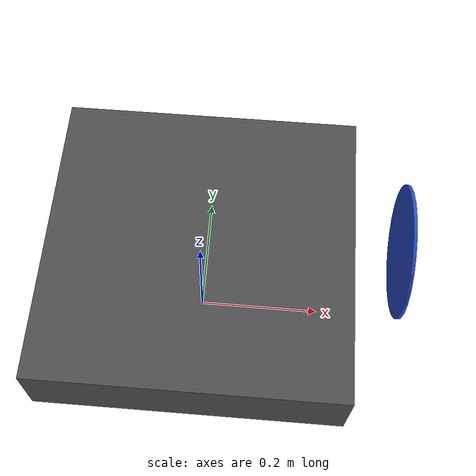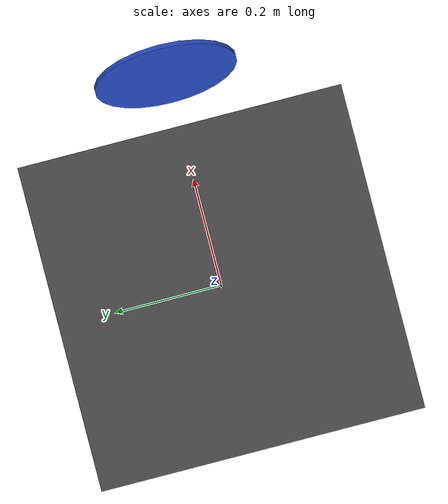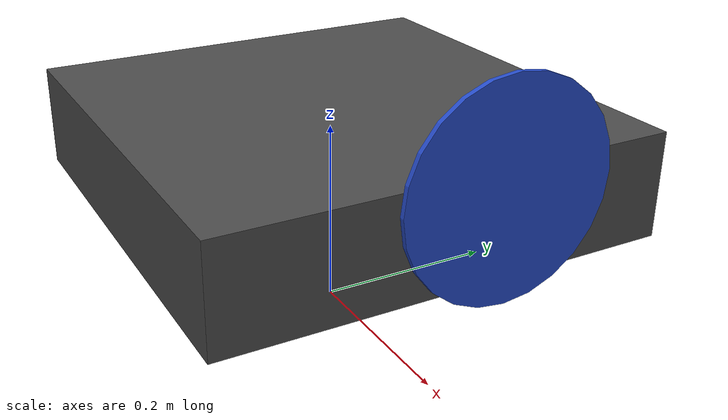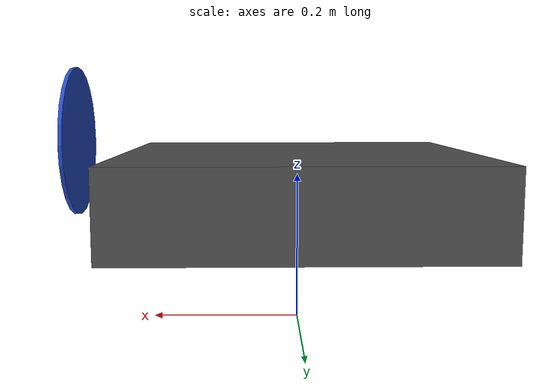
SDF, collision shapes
<?xml version='1.0'?>
<sdf version='1.6'>
  <model name='gooney3'>
    <include>
      <uri>model://plane</uri>
    </include>

    <include>
      <uri>model://gopro_camera</uri>
    </include>
    <joint name="camera_joint" type="fixed">
      <parent>plane::base_link</parent>
      <child>gopro_camera::link</child>
    </joint>
  </model>
</sdf>

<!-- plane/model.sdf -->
<sdf version='1.5'>
  <model name='plane'>
    <pose>0 0 0.246 0 0 0</pose>
    <link name='base_link'>
      <pose>0 0 0 0 0 0</pose>
      <inertial>
        <pose>0 0 0 0 0 0</pose>
        <mass>1.5</mass>
        <inertia>
          <ixx>0.197563</ixx>
          <ixy>0</ixy>
          <ixz>0</ixz>
          <iyy>0.1458929</iyy>
          <iyz>0</iyz>
          <izz>0.1477</izz>
        </inertia>
      </inertial>
      <collision name='base_link_collision'>
        <pose>0 0 -0.07 0 0 0</pose>
        <geometry>
          <box>
            <size>0.47 0.47 0.11</size>
          </box>
        </geometry>
        <surface>
          <contact>
            <ode>
              <max_vel>10</max_vel>
              <min_depth>0.01</min_depth>
            </ode>
          </contact>
        </surface>
      </collision>
      <visual name='base_link_visual'>
        <pose>0.07 0 -0.08 0 0 0</pose>
        <geometry>
          <mesh>
            <scale>0.1 0.1 0.1</scale>
            <uri>model://plane/meshes/body.dae</uri>
          </mesh>
        </geometry>
        <material>
          <script>
            <name>Gazebo/DarkGrey</name>
            <uri>__default__</uri>
          </script>
        </material>
      </visual>
      <gravity>1</gravity>
      <velocity_decay/>
      <self_collide>0</self_collide>
    </link>
    <link name='plane/imu_link'>
      <pose>0 0 0 0 0 0</pose>
      <inertial>
        <pose>0 0 0 0 0 0</pose>
        <mass>0.015</mass>
        <inertia>
          <ixx>1e-05</ixx>
          <ixy>0</ixy>
          <ixz>0</ixz>
          <iyy>1e-05</iyy>
          <iyz>0</iyz>
          <izz>1e-05</izz>
        </inertia>
      </inertial>
    </link>
    <joint name='plane/imu_joint' type='revolute'>
      <child>plane/imu_link</child>
      <parent>base_link</parent>
      <axis>
        <xyz>1 0 0</xyz>
        <limit>
          <lower>0</lower>
          <upper>0</upper>
          <effort>0</effort>
          <velocity>0</velocity>
        </limit>
        <dynamics>
          <spring_reference>0</spring_reference>
          <spring_stiffness>0</spring_stiffness>
        </dynamics>
        <use_parent_model_frame>1</use_parent_model_frame>
      </axis>
    </joint>
    <link name='rotor_puller'>
      <pose>0.3 0 0.0 0 1.57 0</pose>
      <inertial>
        <pose>0 0 0 0 0 0</pose>
        <mass>0.005</mass>
        <inertia>
          <ixx>9.75e-07</ixx>
          <ixy>0</ixy>
          <ixz>0</ixz>
          <iyy>0.000166704</iyy>
          <iyz>0</iyz>
          <izz>0.000167604</izz>
        </inertia>
      </inertial>
      <collision name='rotor_puller_collision'>
        <pose>0.0 0 0.0 0 0 0</pose>
        <geometry>
          <cylinder>
            <length>0.005</length>
            <radius>0.1</radius>
          </cylinder>
        </geometry>
        <surface>
          <contact>
            <ode/>
          </contact>
          <friction>
            <ode/>
          </friction>
        </surface>
      </collision>
      <visual name='rotor_puller_visual'>
        <pose>0 0 -0.09 0 0 0</pose>
        <geometry>
          <mesh>
            <scale>1 1 1</scale>
            <uri>model://plane/meshes/iris_prop_ccw.dae</uri>
          </mesh>
        </geometry>
        <material>
          <script>
            <name>Gazebo/Blue</name>
            <uri>__default__</uri>
          </script>
        </material>
      </visual>
      <gravity>1</gravity>
      <velocity_decay/>
      <self_collide>0</self_collide>
    </link>
    <joint name='rotor_puller_joint' type='revolute'>
      <child>rotor_puller</child>
      <parent>base_link</parent>
      <axis>
        <xyz>1 0 0</xyz>
        <limit>
          <lower>-1e+16</lower>
          <upper>1e+16</upper>
        </limit>
        <dynamics>
          <spring_reference>0</spring_reference>
          <spring_stiffness>0</spring_stiffness>
        </dynamics>
        <use_parent_model_frame>1</use_parent_model_frame>
      </axis>
    </joint>

    <link name="left_elevon">
      <inertial>
        <mass>0.00000001</mass>
        <inertia>
          <ixx>0.000001</ixx>
          <ixy>0.0</ixy>
          <iyy>0.000001</iyy>
          <ixz>0.0</ixz>
          <iyz>0.0</iyz>
          <izz>0.000001</izz>
        </inertia>
        <pose>0 0.3 0 0.00 0 0.0</pose>
      </inertial>
    </link>
    <link name="right_elevon">
      <inertial>
        <mass>0.00000001</mass>
        <inertia>
          <ixx>0.000001</ixx>
          <ixy>0.0</ixy>
          <iyy>0.000001</iyy>
          <ixz>0.0</ixz>
          <iyz>0.0</iyz>
          <izz>0.000001</izz>
        </inertia>
        <pose>0 -0.3 0 0.00 0 0.0</pose>
      </inertial>
    </link>
    <link name="elevator">
      <inertial>
        <mass>0.00000001</mass>
        <inertia>
          <ixx>0.000001</ixx>
          <ixy>0.0</ixy>
          <iyy>0.000001</iyy>
          <ixz>0.0</ixz>
          <iyz>0.0</iyz>
          <izz>0.000001</izz>
        </inertia>
        <pose> -0.5 0 0 0.00 0 0.0</pose>
      </inertial>
    </link>
    <link name="rudder">
      <inertial>
        <mass>0.00000001</mass>
        <inertia>
          <ixx>0.000001</ixx>
          <ixy>0.0</ixy>
          <iyy>0.000001</iyy>
          <ixz>0.0</ixz>
          <iyz>0.0</iyz>
          <izz>0.000001</izz>
        </inertia>
        <pose>-0.5 0 0.05 0 0 0 </pose>
      </inertial>
    </link>
    <joint name='left_elevon_joint' type='revolute'>
      <parent>base_link</parent>
      <child>left_elevon</child>
      <pose>0 0.3 0 0.00 0 0.0</pose>
      <axis>
        <xyz>0 1 0</xyz>
        <limit>
          <!-- -30/+30 deg. -->
          <lower>-0.53</lower>
          <upper>0.53</upper>
        </limit>
        <dynamics>
          <damping>1.000</damping>
        </dynamics>
      </axis>
      <physics>
        <ode>
          <implicit_spring_damper>1</implicit_spring_damper>
        </ode>
      </physics>
    </joint>
    <joint name='right_elevon_joint' type='revolute'>
      <parent>base_link</parent>
      <child>right_elevon</child>
      <pose>0 -0.3 0 0.00 0 0.0</pose>
      <axis>
        <xyz>0 1 0</xyz>
        <limit>
          <!-- -30/+30 deg. -->
          <lower>-0.53</lower>
          <upper>0.53</upper>
        </limit>
        <dynamics>
          <damping>1.000</damping>
        </dynamics>
      </axis>
      <physics>
        <ode>
          <implicit_spring_damper>1</implicit_spring_damper>
        </ode>
      </physics>
    </joint>
    <joint name='elevator_joint' type='revolute'>
      <parent>base_link</parent>
      <child>elevator</child>
      <pose> -0.5 0 0 0 0 0</pose>
      <axis>
        <xyz>0 1 0</xyz>
        <limit>
          <!-- -30/+30 deg. -->
          <lower>-0.53</lower>
          <upper>0.53</upper>
        </limit>
        <dynamics>
          <damping>1.000</damping>
        </dynamics>
      </axis>
      <physics>
        <ode>
          <implicit_spring_damper>1</implicit_spring_damper>
        </ode>
      </physics>
    </joint>
    <joint name='rudder_joint' type='revolute'>
      <parent>base_link</parent>
      <child>rudder</child>
      <pose>-0.5 0 0.05 0.00 0 0.0</pose>
      <axis>
        <xyz>1 0 0</xyz>
        <limit>
          <!-- -30/+30 deg. -->
          <lower>-0.01</lower>
          <upper>0.01</upper>
        </limit>
        <dynamics>
          <damping>1.000</damping>
        </dynamics>
      </axis>
      <physics>
        <ode>
          <implicit_spring_damper>1</implicit_spring_damper>
        </ode>
      </physics>
    </joint>
    <plugin name="left_wing" filename="libLiftDragPlugin.so">
      <a0>0.05984281113</a0>
      <cla>4.752798721</cla>
      <cda>0.6417112299</cda>
      <cma>-1.8</cma>
      <alpha_stall>0.3391428111</alpha_stall>
      <cla_stall>-3.85</cla_stall>
      <cda_stall>-0.9233984055</cda_stall>
      <cma_stall>0</cma_stall>
      <cp>-0.05 0.3 0.05</cp>
      <area>0.12</area>
      <air_density>1.2041</air_density>
      <forward>1 0 0</forward>
      <upward>0 0 1</upward>
      <link_name>base_link</link_name>
      <control_joint_name>
        left_elevon_joint
      </control_joint_name>
      <control_joint_rad_to_cl>-0.5</control_joint_rad_to_cl>
    </plugin>
    <plugin name="right_wing" filename="libLiftDragPlugin.so">
      <a0>0.05984281113</a0>
      <cla>4.752798721</cla>
      <cda>0.6417112299</cda>
      <cma>-1.8</cma>
      <alpha_stall>0.3391428111</alpha_stall>
      <cla_stall>-3.85</cla_stall>
      <cda_stall>-0.9233984055</cda_stall>
      <cma_stall>0</cma_stall>
      <cp>-0.05 -0.3 0.05</cp>
      <area>0.12</area>
      <air_density>1.2041</air_density>
      <forward>1 0 0</forward>
      <upward>0 0 1</upward>
      <link_name>base_link</link_name>
      <control_joint_name>
        right_elevon_joint
      </control_joint_name>
      <control_joint_rad_to_cl>-0.5</control_joint_rad_to_cl>
    </plugin>
    <plugin name="elevator" filename="libLiftDragPlugin.so">
      <a0>-0.2</a0>
      <cla>4.752798721</cla>
      <cda>0.6417112299</cda>
      <cma>-1.8</cma>
      <alpha_stall>0.3391428111</alpha_stall>
      <cla_stall>-3.85</cla_stall>
      <cda_stall>-0.9233984055</cda_stall>
      <cma_stall>0</cma_stall>
      <cp>-0.5 0 0</cp>
      <area>0.01</area>
      <air_density>1.2041</air_density>
      <forward>1 0 0</forward>
      <upward>0 0 1</upward>
      <link_name>base_link</link_name>
      <control_joint_name>
        elevator_joint
      </control_joint_name>
      <control_joint_rad_to_cl>-4.0</control_joint_rad_to_cl>
    </plugin>
    <plugin name="rudder" filename="libLiftDragPlugin.so">
      <a0>0.0</a0>
      <cla>4.752798721</cla>
      <cda>0.6417112299</cda>
      <cma>-1.8</cma>
      <alpha_stall>0.3391428111</alpha_stall>
      <cla_stall>-3.85</cla_stall>
      <cda_stall>-0.9233984055</cda_stall>
      <cma_stall>0</cma_stall>
      <cp>-0.5 0 0.05</cp>
      <area>0.02</area>
      <air_density>1.2041</air_density>
      <forward>1 0 0</forward>
      <upward>0 1 0</upward>
      <link_name>base_link</link_name>
    </plugin>
    <plugin name='puller' filename='librotors_gazebo_motor_model.so'>
      <robotNamespace></robotNamespace>
      <jointName>rotor_puller_joint</jointName>
      <linkName>rotor_puller</linkName>
      <turningDirection>cw</turningDirection>
      <timeConstantUp>0.0125</timeConstantUp>
      <timeConstantDown>0.025</timeConstantDown>
      <maxRotVelocity>3500</maxRotVelocity>
      <motorConstant>8.54858e-06</motorConstant>
      <momentConstant>0.01</momentConstant>
      <commandSubTopic>/gazebo/command/motor_speed</commandSubTopic>
      <motorNumber>4</motorNumber>
      <rotorDragCoefficient>8.06428e-05</rotorDragCoefficient>
      <rollingMomentCoefficient>1e-06</rollingMomentCoefficient>
      <motorSpeedPubTopic>/motor_speed/4</motorSpeedPubTopic>
      <rotorVelocitySlowdownSim>10</rotorVelocitySlowdownSim>
    </plugin>
    <plugin name='rotors_gazebo_imu_plugin' filename='librotors_gazebo_imu_plugin.so'>
      <robotNamespace></robotNamespace>
      <linkName>plane/imu_link</linkName>
      <imuTopic>/imu</imuTopic>
      <gyroscopeNoiseDensity>0.0003394</gyroscopeNoiseDensity>
      <gyroscopeRandomWalk>3.8785e-05</gyroscopeRandomWalk>
      <gyroscopeBiasCorrelationTime>1000.0</gyroscopeBiasCorrelationTime>
      <gyroscopeTurnOnBiasSigma>0.0087</gyroscopeTurnOnBiasSigma>
      <accelerometerNoiseDensity>0.004</accelerometerNoiseDensity>
      <accelerometerRandomWalk>0.006</accelerometerRandomWalk>
      <accelerometerBiasCorrelationTime>300.0</accelerometerBiasCorrelationTime>
      <accelerometerTurnOnBiasSigma>0.196</accelerometerTurnOnBiasSigma>
    </plugin>
    <plugin name='wind_plugin' filename='librotors_gazebo_wind_plugin.so'>
      <frameId>base_link</frameId>
      <linkName>base_link</linkName>
      <robotNamespace/>
      <xyzOffset>1 0 0</xyzOffset>
      <windDirection>0 1 0</windDirection>
      <windForceMean>0.7</windForceMean>
      <windGustDirection>0 0 0</windGustDirection>
      <windGustDuration>0</windGustDuration>
      <windGustStart>0</windGustStart>
      <windGustForceMean>0</windGustForceMean>
    </plugin>
    <plugin name='gps_plugin' filename='libgazebo_gps_plugin.so'>
      <robotNamespace></robotNamespace>
      <gpsNoise>true</gpsNoise>
    </plugin>
    <plugin name='mavlink_interface' filename='librotors_gazebo_mavlink_interface.so'>
      <robotNamespace></robotNamespace>
      <imuSubTopic>/imu</imuSubTopic>
      <gpsSubTopic>/gps</gpsSubTopic>
      <motorSpeedCommandPubTopic>/gazebo/command/motor_speed</motorSpeedCommandPubTopic>
      <control_channels>
        <channel name="rotor4">
          <input_index>4</input_index>
          <input_offset>0</input_offset>
          <input_scaling>3500</input_scaling>
          <zero_position_disarmed>0</zero_position_disarmed>
          <zero_position_armed>0</zero_position_armed>
          <joint_control_type>velocity</joint_control_type>
          <joint_name>rotor_puller_joint</joint_name>
        </channel>
        <channel name="left_elevon">
          <input_index>5</input_index>
          <input_offset>0</input_offset>
          <input_scaling>1</input_scaling>
          <zero_position_disarmed>0</zero_position_disarmed>
          <zero_position_armed>0</zero_position_armed>
          <joint_control_type>position_kinematic</joint_control_type>
          <joint_name>left_elevon_joint</joint_name>
        </channel>
        <channel name="right_elevon">
          <input_index>6</input_index>
          <input_offset>0</input_offset>
          <input_scaling>1</input_scaling>
          <zero_position_disarmed>0</zero_position_disarmed>
          <zero_position_armed>0</zero_position_armed>
          <joint_control_type>position_kinematic</joint_control_type>
          <joint_name>right_elevon_joint</joint_name>
        </channel>
        <channel name="elevator">
          <input_index>7</input_index>
          <input_offset>0</input_offset>
          <input_scaling>1</input_scaling>
          <zero_position_disarmed>0</zero_position_disarmed>
          <zero_position_armed>0</zero_position_armed>
          <joint_control_type>position_kinematic</joint_control_type>
          <joint_name>elevator_joint</joint_name>
        </channel>
      </control_channels>
    </plugin>
    <static>0</static>
  </model>
</sdf>

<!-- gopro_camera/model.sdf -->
<sdf version="1.5">
  <model name="gopro_camera">
    <static>false</static>
    <self_collide>false</self_collide>
    <pose>0 0 0.15 0 1.5707 0</pose>
    <link name="link">
      <inertial>
        <pose>0 0 0 0 0 0</pose>
        <mass>0.000001</mass>
        <inertia>
          <ixx>0.000001</ixx>
          <ixy>0.000000</ixy>
          <ixz>0.000000</ixz>
          <iyy>0.000001</iyy>
          <iyz>0.000000</iyz>
          <izz>0.000001</izz>
        </inertia>
      </inertial>
      <collision name="collision">
        <geometry>
          <box>
            <size>0.01 0.01 0.01</size>
          </box>
        </geometry>
      </collision>
      <visual name="visual">
        <geometry>
          <box>
            <size>0.01 0.01 0.01</size>
          </box>
        </geometry>
      </visual>
      <sensor name="camera" type="camera">
        <camera>
          <horizontal_fov>2.0595</horizontal_fov>
          <image>
            <width>4096</width>
            <height>2160</height>
          </image>
          <clip>
            <near>0.01</near>
            <far>300</far>
          </clip>
        </camera>
        <always_on>1</always_on>
        <update_rate>21</update_rate>
        <plugin name="camera_plugin" filename="libgazebo_ros_camera.so">
            <alwaysOn>true</alwaysOn>
            <updateRate>21.0</updateRate>
            <cameraName>camera_wide</cameraName>
            <imageTopicName>image_color</imageTopicName>
            <frameName>camera</frameName>
            <cameraInfoTopicName>camera_info</cameraInfoTopicName>
            <hackBaseline>0.07</hackBaseline>
            <distortionK1>0.0</distortionK1>
            <distortionK2>0.0</distortionK2>
            <distortionK3>0.0</distortionK3>
            <distortionT1>0.0</distortionT1>
            <distortionT2>0.0</distortionT2>
        </plugin>
      </sensor>
    </link>
  </model>
</sdf>
